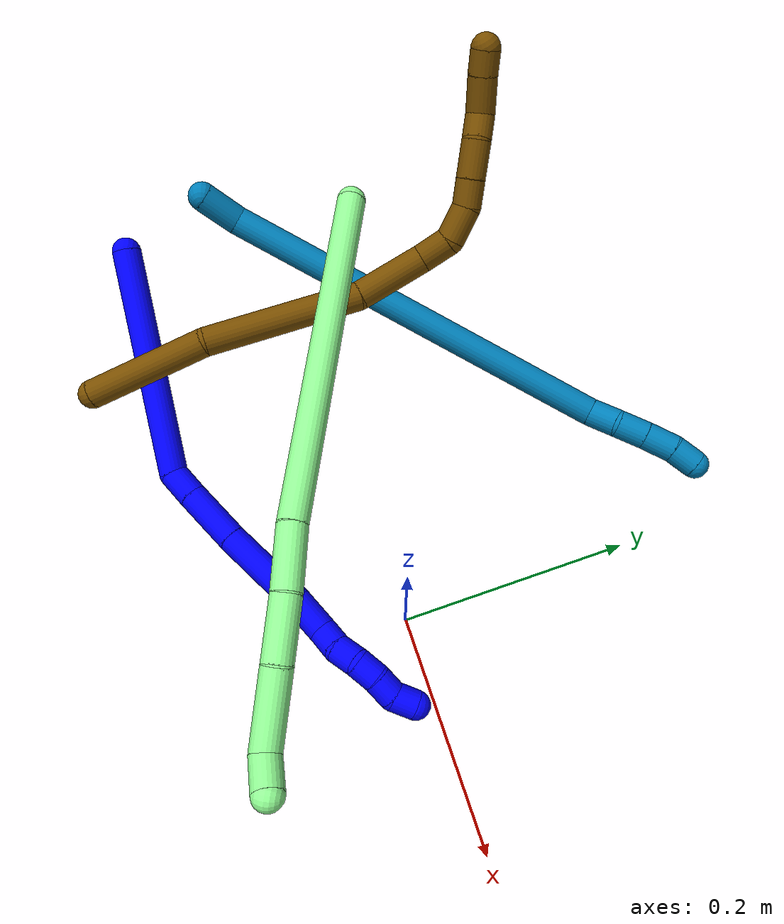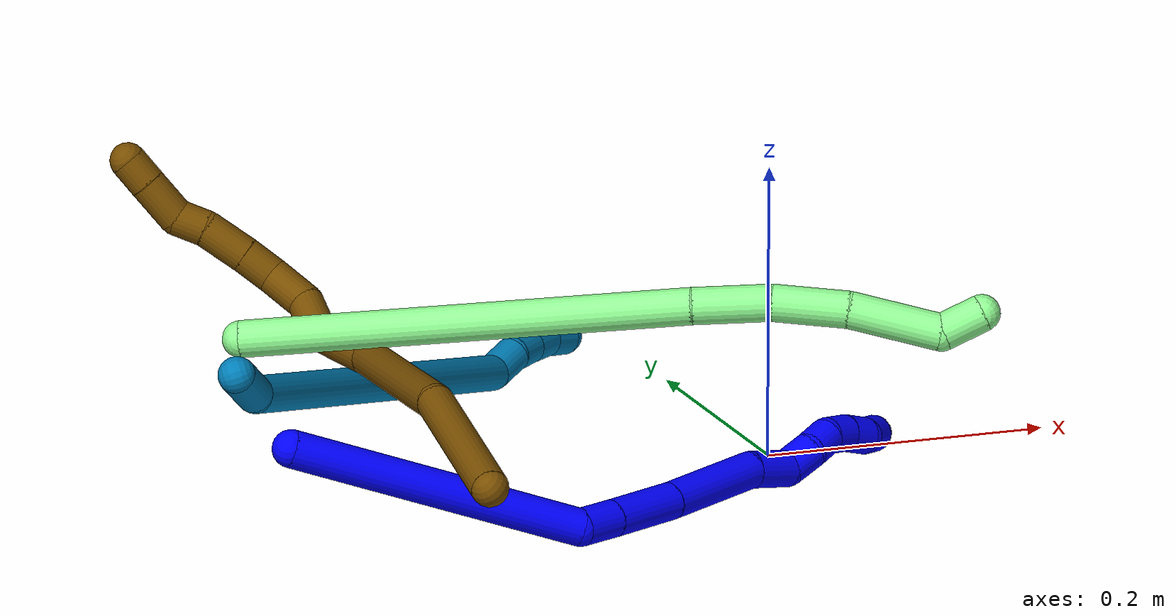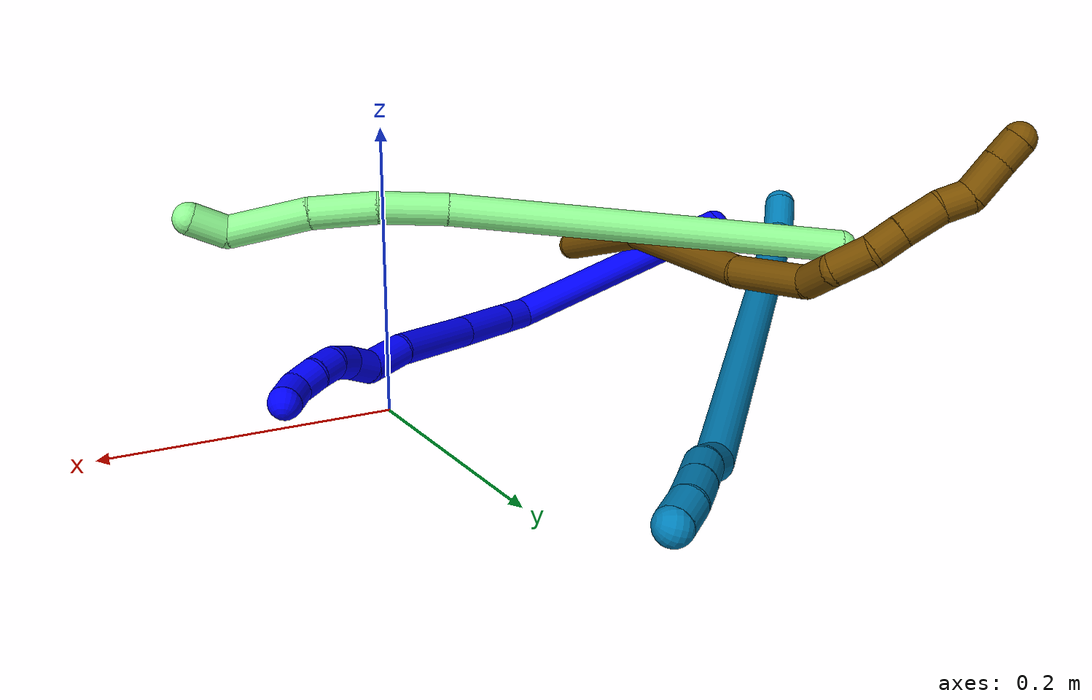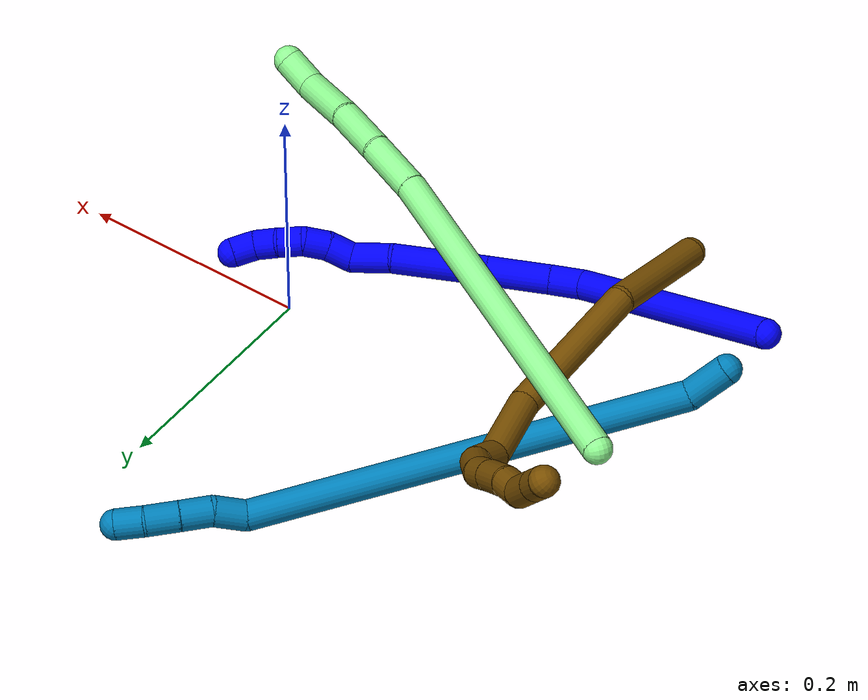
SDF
<sdf version="1.7">
 <world name="default">
  <model name="1">
   <static>0</static>
   <link name="1">
    <collision name="collision-cylinder-e_1_1_4">
     <pose>0.084915 -0.02155 -0.048684 2.72486 1.01077 2.41159</pose>
     <geometry><cylinder><radius>0.0125</radius><length>0.200452</length></cylinder></geometry>
     <surface>
      <friction><ode><mu>1.16</mu><mu2>1.16</mu2><slip1>0</slip1><slip2>0</slip2></ode></friction>
      <contact><ode><kp>1e+06</kp><kd>1</kd><max_vel>0</max_vel><min_depth>0.001</min_depth></ode></contact>
     </surface>
    </collision>
    <visual name="visual-cylinder-e_1_1_4">
     <pose>0.084915 -0.02155 -0.048684 2.72486 1.01077 2.41159</pose>
     <geometry><cylinder><radius>0.0125</radius><length>0.200452</length></cylinder></geometry>
     <material><ambient>0 0 1 1</ambient></material>
    </visual>
    <collision name="collision-cylinder-e_2_4_5">
     <pose>0.179753 -0.037995 -0.106062 -2.6105 0.777409 -1.96918</pose>
     <geometry><cylinder><radius>0.0125</radius><length>0.02829</length></cylinder></geometry>
     <surface>
      <friction><ode><mu>1.16</mu><mu2>1.16</mu2><slip1>0</slip1><slip2>0</slip2></ode></friction>
      <contact><ode><kp>1e+06</kp><kd>1</kd><max_vel>0</max_vel><min_depth>0.001</min_depth></ode></contact>
     </surface>
    </collision>
    <visual name="visual-cylinder-e_2_4_5">
     <pose>0.179753 -0.037995 -0.106062 -2.6105 0.777409 -1.96918</pose>
     <geometry><cylinder><radius>0.0125</radius><length>0.02829</length></cylinder></geometry>
     <material><ambient>0 0 1 1</ambient></material>
    </visual>
    <collision name="collision-cylinder-e_3_5_6">
     <pose>0.207753 -0.022843 -0.13134 -2.59696 0.750413 -1.9081</pose>
     <geometry><cylinder><radius>0.0125</radius><length>0.053021</length></cylinder></geometry>
     <surface>
      <friction><ode><mu>1.16</mu><mu2>1.16</mu2><slip1>0</slip1><slip2>0</slip2></ode></friction>
      <contact><ode><kp>1e+06</kp><kd>1</kd><max_vel>0</max_vel><min_depth>0.001</min_depth></ode></contact>
     </surface>
    </collision>
    <visual name="visual-cylinder-e_3_5_6">
     <pose>0.207753 -0.022843 -0.13134 -2.59696 0.750413 -1.9081</pose>
     <geometry><cylinder><radius>0.0125</radius><length>0.053021</length></cylinder></geometry>
     <material><ambient>0 0 1 1</ambient></material>
    </visual>
    <collision name="collision-cylinder-e_4_6_7">
     <pose>0.251561 0.004437 -0.172687 -2.53359 0.706127 -1.73104</pose>
     <geometry><cylinder><radius>0.0125</radius><length>0.079302</length></cylinder></geometry>
     <surface>
      <friction><ode><mu>1.16</mu><mu2>1.16</mu2><slip1>0</slip1><slip2>0</slip2></ode></friction>
      <contact><ode><kp>1e+06</kp><kd>1</kd><max_vel>0</max_vel><min_depth>0.001</min_depth></ode></contact>
     </surface>
    </collision>
    <visual name="visual-cylinder-e_4_6_7">
     <pose>0.251561 0.004437 -0.172687 -2.53359 0.706127 -1.73104</pose>
     <geometry><cylinder><radius>0.0125</radius><length>0.079302</length></cylinder></geometry>
     <material><ambient>0 0 1 1</ambient></material>
    </visual>
    <collision name="collision-cylinder-e_5_7_8">
     <pose>0.288563 0.025401 -0.20972 -2.84649 0.721131 -2.3906</pose>
     <geometry><cylinder><radius>0.0125</radius><length>0.03415</length></cylinder></geometry>
     <surface>
      <friction><ode><mu>1.16</mu><mu2>1.16</mu2><slip1>0</slip1><slip2>0</slip2></ode></friction>
      <contact><ode><kp>1e+06</kp><kd>1</kd><max_vel>0</max_vel><min_depth>0.001</min_depth></ode></contact>
     </surface>
    </collision>
    <visual name="visual-cylinder-e_5_7_8">
     <pose>0.288563 0.025401 -0.20972 -2.84649 0.721131 -2.3906</pose>
     <geometry><cylinder><radius>0.0125</radius><length>0.03415</length></cylinder></geometry>
     <material><ambient>0 0 1 1</ambient></material>
    </visual>
    <collision name="collision-cylinder-e_6_8_9">
     <pose>0.308092 0.035869 -0.225682 -2.07211 0.821196 -1.26766</pose>
     <geometry><cylinder><radius>0.0125</radius><length>0.022556</length></cylinder></geometry>
     <surface>
      <friction><ode><mu>1.16</mu><mu2>1.16</mu2><slip1>0</slip1><slip2>0</slip2></ode></friction>
      <contact><ode><kp>1e+06</kp><kd>1</kd><max_vel>0</max_vel><min_depth>0.001</min_depth></ode></contact>
     </surface>
    </collision>
    <visual name="visual-cylinder-e_6_8_9">
     <pose>0.308092 0.035869 -0.225682 -2.07211 0.821196 -1.26766</pose>
     <geometry><cylinder><radius>0.0125</radius><length>0.022556</length></cylinder></geometry>
     <material><ambient>0 0 1 1</ambient></material>
    </visual>
    <collision name="collision-cylinder-e_7_9_10">
     <pose>0.322203 0.049315 -0.235014 -2.26979 0.589171 -1.15473</pose>
     <geometry><cylinder><radius>0.0125</radius><length>0.021079</length></cylinder></geometry>
     <surface>
      <friction><ode><mu>1.16</mu><mu2>1.16</mu2><slip1>0</slip1><slip2>0</slip2></ode></friction>
      <contact><ode><kp>1e+06</kp><kd>1</kd><max_vel>0</max_vel><min_depth>0.001</min_depth></ode></contact>
     </surface>
    </collision>
    <visual name="visual-cylinder-e_7_9_10">
     <pose>0.322203 0.049315 -0.235014 -2.26979 0.589171 -1.15473</pose>
     <geometry><cylinder><radius>0.0125</radius><length>0.021079</length></cylinder></geometry>
     <material><ambient>0 0 1 1</ambient></material>
    </visual>
    <collision name="collision-cylinder-e_8_10_11">
     <pose>0.333704 0.059442 -0.248539 -2.73256 0.580995 -1.92848</pose>
     <geometry><cylinder><radius>0.0125</radius><length>0.020567</length></cylinder></geometry>
     <surface>
      <friction><ode><mu>1.16</mu><mu2>1.16</mu2><slip1>0</slip1><slip2>0</slip2></ode></friction>
      <contact><ode><kp>1e+06</kp><kd>1</kd><max_vel>0</max_vel><min_depth>0.001</min_depth></ode></contact>
     </surface>
    </collision>
    <visual name="visual-cylinder-e_8_10_11">
     <pose>0.333704 0.059442 -0.248539 -2.73256 0.580995 -1.92848</pose>
     <geometry><cylinder><radius>0.0125</radius><length>0.020567</length></cylinder></geometry>
     <material><ambient>0 0 1 1</ambient></material>
    </visual>
    <collision name="collision-cylinder-e_9_11_12">
     <pose>0.345366 0.064186 -0.264388 -2.97669 0.640624 -2.65331</pose>
     <geometry><cylinder><radius>0.0125</radius><length>0.020136</length></cylinder></geometry>
     <surface>
      <friction><ode><mu>1.16</mu><mu2>1.16</mu2><slip1>0</slip1><slip2>0</slip2></ode></friction>
      <contact><ode><kp>1e+06</kp><kd>1</kd><max_vel>0</max_vel><min_depth>0.001</min_depth></ode></contact>
     </surface>
    </collision>
    <visual name="visual-cylinder-e_9_11_12">
     <pose>0.345366 0.064186 -0.264388 -2.97669 0.640624 -2.65331</pose>
     <geometry><cylinder><radius>0.0125</radius><length>0.020136</length></cylinder></geometry>
     <material><ambient>0 0 1 1</ambient></material>
    </visual>
    <collision name="collision-cylinder-e_10_12_2">
     <pose>0.354079 0.069728 -0.281266 -2.69978 0.266835 -1.07737</pose>
     <geometry><cylinder><radius>0.0125</radius><length>0.020448</length></cylinder></geometry>
     <surface>
      <friction><ode><mu>1.16</mu><mu2>1.16</mu2><slip1>0</slip1><slip2>0</slip2></ode></friction>
      <contact><ode><kp>1e+06</kp><kd>1</kd><max_vel>0</max_vel><min_depth>0.001</min_depth></ode></contact>
     </surface>
    </collision>
    <visual name="visual-cylinder-e_10_12_2">
     <pose>0.354079 0.069728 -0.281266 -2.69978 0.266835 -1.07737</pose>
     <geometry><cylinder><radius>0.0125</radius><length>0.020448</length></cylinder></geometry>
     <material><ambient>0 0 1 1</ambient></material>
    </visual>
    <collision name="collision-sphere-2">
     <pose>0.356775 0.073945 -0.290181 0 -0 0</pose>
     <geometry><sphere><radius>0.0125</radius></sphere></geometry>
     <surface>
      <friction><ode><mu>1.16</mu><mu2>1.16</mu2><slip1>0</slip1><slip2>0</slip2></ode></friction>
      <contact><ode><kp>1e+06</kp><kd>1</kd><max_vel>0</max_vel><min_depth>0.001</min_depth></ode></contact>
     </surface>
    </collision>
    <visual name="visual-sphere-2">
     <pose>0.356775 0.073945 -0.290181 0 -0 0</pose>
     <geometry><sphere><radius>0.0125</radius></sphere></geometry>
     <material><ambient>0 0 1 1</ambient></material>
    </visual>
    <collision name="collision-sphere-12">
     <pose>0.351383 0.065511 -0.272351 0 -0 0</pose>
     <geometry><sphere><radius>0.0125</radius></sphere></geometry>
     <surface>
      <friction><ode><mu>1.16</mu><mu2>1.16</mu2><slip1>0</slip1><slip2>0</slip2></ode></friction>
      <contact><ode><kp>1e+06</kp><kd>1</kd><max_vel>0</max_vel><min_depth>0.001</min_depth></ode></contact>
     </surface>
    </collision>
    <visual name="visual-sphere-12">
     <pose>0.351383 0.065511 -0.272351 0 -0 0</pose>
     <geometry><sphere><radius>0.0125</radius></sphere></geometry>
     <material><ambient>0 0 1 1</ambient></material>
    </visual>
    <collision name="collision-sphere-11">
     <pose>0.339348 0.062861 -0.256426 0 -0 0</pose>
     <geometry><sphere><radius>0.0125</radius></sphere></geometry>
     <surface>
      <friction><ode><mu>1.16</mu><mu2>1.16</mu2><slip1>0</slip1><slip2>0</slip2></ode></friction>
      <contact><ode><kp>1e+06</kp><kd>1</kd><max_vel>0</max_vel><min_depth>0.001</min_depth></ode></contact>
     </surface>
    </collision>
    <visual name="visual-sphere-11">
     <pose>0.339348 0.062861 -0.256426 0 -0 0</pose>
     <geometry><sphere><radius>0.0125</radius></sphere></geometry>
     <material><ambient>0 0 1 1</ambient></material>
    </visual>
    <collision name="collision-sphere-10">
     <pose>0.32806 0.056023 -0.240652 0 -0 0</pose>
     <geometry><sphere><radius>0.0125</radius></sphere></geometry>
     <surface>
      <friction><ode><mu>1.16</mu><mu2>1.16</mu2><slip1>0</slip1><slip2>0</slip2></ode></friction>
      <contact><ode><kp>1e+06</kp><kd>1</kd><max_vel>0</max_vel><min_depth>0.001</min_depth></ode></contact>
     </surface>
    </collision>
    <visual name="visual-sphere-10">
     <pose>0.32806 0.056023 -0.240652 0 -0 0</pose>
     <geometry><sphere><radius>0.0125</radius></sphere></geometry>
     <material><ambient>0 0 1 1</ambient></material>
    </visual>
    <collision name="collision-sphere-9">
     <pose>0.316347 0.042608 -0.229375 0 -0 0</pose>
     <geometry><sphere><radius>0.0125</radius></sphere></geometry>
     <surface>
      <friction><ode><mu>1.16</mu><mu2>1.16</mu2><slip1>0</slip1><slip2>0</slip2></ode></friction>
      <contact><ode><kp>1e+06</kp><kd>1</kd><max_vel>0</max_vel><min_depth>0.001</min_depth></ode></contact>
     </surface>
    </collision>
    <visual name="visual-sphere-9">
     <pose>0.316347 0.042608 -0.229375 0 -0 0</pose>
     <geometry><sphere><radius>0.0125</radius></sphere></geometry>
     <material><ambient>0 0 1 1</ambient></material>
    </visual>
    <collision name="collision-sphere-4">
     <pose>0.169831 -0.043101 -0.097369 0 -0 0</pose>
     <geometry><sphere><radius>0.0125</radius></sphere></geometry>
     <surface>
      <friction><ode><mu>1.16</mu><mu2>1.16</mu2><slip1>0</slip1><slip2>0</slip2></ode></friction>
      <contact><ode><kp>1e+06</kp><kd>1</kd><max_vel>0</max_vel><min_depth>0.001</min_depth></ode></contact>
     </surface>
    </collision>
    <visual name="visual-sphere-4">
     <pose>0.169831 -0.043101 -0.097369 0 -0 0</pose>
     <geometry><sphere><radius>0.0125</radius></sphere></geometry>
     <material><ambient>0 0 1 1</ambient></material>
    </visual>
    <collision name="collision-sphere-1">
     <geometry><sphere><radius>0.0125</radius></sphere></geometry>
     <surface>
      <friction><ode><mu>1.16</mu><mu2>1.16</mu2><slip1>0</slip1><slip2>0</slip2></ode></friction>
      <contact><ode><kp>1e+06</kp><kd>1</kd><max_vel>0</max_vel><min_depth>0.001</min_depth></ode></contact>
     </surface>
    </collision>
    <visual name="visual-sphere-1">
     <geometry><sphere><radius>0.0125</radius></sphere></geometry>
     <material><ambient>0 0 1 1</ambient></material>
    </visual>
    <collision name="collision-sphere-8">
     <pose>0.299837 0.02913 -0.22199 0 -0 0</pose>
     <geometry><sphere><radius>0.0125</radius></sphere></geometry>
     <surface>
      <friction><ode><mu>1.16</mu><mu2>1.16</mu2><slip1>0</slip1><slip2>0</slip2></ode></friction>
      <contact><ode><kp>1e+06</kp><kd>1</kd><max_vel>0</max_vel><min_depth>0.001</min_depth></ode></contact>
     </surface>
    </collision>
    <visual name="visual-sphere-8">
     <pose>0.299837 0.02913 -0.22199 0 -0 0</pose>
     <geometry><sphere><radius>0.0125</radius></sphere></geometry>
     <material><ambient>0 0 1 1</ambient></material>
    </visual>
    <collision name="collision-sphere-5">
     <pose>0.189675 -0.032889 -0.114755 0 -0 0</pose>
     <geometry><sphere><radius>0.0125</radius></sphere></geometry>
     <surface>
      <friction><ode><mu>1.16</mu><mu2>1.16</mu2><slip1>0</slip1><slip2>0</slip2></ode></friction>
      <contact><ode><kp>1e+06</kp><kd>1</kd><max_vel>0</max_vel><min_depth>0.001</min_depth></ode></contact>
     </surface>
    </collision>
    <visual name="visual-sphere-5">
     <pose>0.189675 -0.032889 -0.114755 0 -0 0</pose>
     <geometry><sphere><radius>0.0125</radius></sphere></geometry>
     <material><ambient>0 0 1 1</ambient></material>
    </visual>
    <collision name="collision-sphere-6">
     <pose>0.225831 -0.012797 -0.147924 0 -0 0</pose>
     <geometry><sphere><radius>0.0125</radius></sphere></geometry>
     <surface>
      <friction><ode><mu>1.16</mu><mu2>1.16</mu2><slip1>0</slip1><slip2>0</slip2></ode></friction>
      <contact><ode><kp>1e+06</kp><kd>1</kd><max_vel>0</max_vel><min_depth>0.001</min_depth></ode></contact>
     </surface>
    </collision>
    <visual name="visual-sphere-6">
     <pose>0.225831 -0.012797 -0.147924 0 -0 0</pose>
     <geometry><sphere><radius>0.0125</radius></sphere></geometry>
     <material><ambient>0 0 1 1</ambient></material>
    </visual>
    <collision name="collision-sphere-7">
     <pose>0.27729 0.021671 -0.19745 0 -0 0</pose>
     <geometry><sphere><radius>0.0125</radius></sphere></geometry>
     <surface>
      <friction><ode><mu>1.16</mu><mu2>1.16</mu2><slip1>0</slip1><slip2>0</slip2></ode></friction>
      <contact><ode><kp>1e+06</kp><kd>1</kd><max_vel>0</max_vel><min_depth>0.001</min_depth></ode></contact>
     </surface>
    </collision>
    <visual name="visual-sphere-7">
     <pose>0.27729 0.021671 -0.19745 0 -0 0</pose>
     <geometry><sphere><radius>0.0125</radius></sphere></geometry>
     <material><ambient>0 0 1 1</ambient></material>
    </visual>
    <inertial>
     <pose>0.195448 0.000806 -0.133621 0 -0 0</pose>
     <mass>0.5</mass>
     <inertia>
      <ixx>-6.6e-05</ixx>
      <ixy>0</ixy>
      <ixz>0</ixz>
      <iyy>0.000851</iyy>
      <iyz>0</iyz>
      <izz>-0.000531</izz>
     </inertia>
    </inertial>
   </link>
   <pose>-0.376211 -0.131156 0.077086 0.89029 -0.166926 -0.377487</pose>
  </model>
  <model name="9">
   <static>0</static>
   <link name="9">
    <collision name="collision-cylinder-e_1_1_4">
     <pose>0.010808 0.014279 -0.002643 -1.75384 0.639816 -0.757982</pose>
     <geometry><cylinder><radius>0.0125</radius><length>0.036204</length></cylinder></geometry>
     <surface>
      <friction><ode><mu>1.16</mu><mu2>1.16</mu2><slip1>0</slip1><slip2>0</slip2></ode></friction>
      <contact><ode><kp>1e+06</kp><kd>1</kd><max_vel>0</max_vel><min_depth>0.001</min_depth></ode></contact>
     </surface>
    </collision>
    <visual name="visual-cylinder-e_1_1_4">
     <pose>0.010808 0.014279 -0.002643 -1.75384 0.639816 -0.757982</pose>
     <geometry><cylinder><radius>0.0125</radius><length>0.036204</length></cylinder></geometry>
     <material><ambient>0 0.490196 0.709804 1</ambient></material>
    </visual>
    <collision name="collision-cylinder-e_2_4_5">
     <pose>0.159669 0.119437 -0.075789 -2.2306 0.876163 -1.52611</pose>
     <geometry><cylinder><radius>0.0125</radius><length>0.359378</length></cylinder></geometry>
     <surface>
      <friction><ode><mu>1.16</mu><mu2>1.16</mu2><slip1>0</slip1><slip2>0</slip2></ode></friction>
      <contact><ode><kp>1e+06</kp><kd>1</kd><max_vel>0</max_vel><min_depth>0.001</min_depth></ode></contact>
     </surface>
    </collision>
    <visual name="visual-cylinder-e_2_4_5">
     <pose>0.159669 0.119437 -0.075789 -2.2306 0.876163 -1.52611</pose>
     <geometry><cylinder><radius>0.0125</radius><length>0.359378</length></cylinder></geometry>
     <material><ambient>0 0.490196 0.709804 1</ambient></material>
    </visual>
    <collision name="collision-cylinder-e_3_5_6">
     <pose>0.30856 0.211411 -0.154568 -3.00998 0.914418 -2.87528</pose>
     <geometry><cylinder><radius>0.0125</radius><length>0.027361</length></cylinder></geometry>
     <surface>
      <friction><ode><mu>1.16</mu><mu2>1.16</mu2><slip1>0</slip1><slip2>0</slip2></ode></friction>
      <contact><ode><kp>1e+06</kp><kd>1</kd><max_vel>0</max_vel><min_depth>0.001</min_depth></ode></contact>
     </surface>
    </collision>
    <visual name="visual-cylinder-e_3_5_6">
     <pose>0.30856 0.211411 -0.154568 -3.00998 0.914418 -2.87528</pose>
     <geometry><cylinder><radius>0.0125</radius><length>0.027361</length></cylinder></geometry>
     <material><ambient>0 0.490196 0.709804 1</ambient></material>
    </visual>
    <collision name="collision-cylinder-e_4_6_7">
     <pose>0.330299 0.217006 -0.168596 -2.47781 0.980625 -1.99497</pose>
     <geometry><cylinder><radius>0.0125</radius><length>0.026242</length></cylinder></geometry>
     <surface>
      <friction><ode><mu>1.16</mu><mu2>1.16</mu2><slip1>0</slip1><slip2>0</slip2></ode></friction>
      <contact><ode><kp>1e+06</kp><kd>1</kd><max_vel>0</max_vel><min_depth>0.001</min_depth></ode></contact>
     </surface>
    </collision>
    <visual name="visual-cylinder-e_4_6_7">
     <pose>0.330299 0.217006 -0.168596 -2.47781 0.980625 -1.99497</pose>
     <geometry><cylinder><radius>0.0125</radius><length>0.026242</length></cylinder></geometry>
     <material><ambient>0 0.490196 0.709804 1</ambient></material>
    </visual>
    <collision name="collision-cylinder-e_5_7_8">
     <pose>0.352261 0.226608 -0.180666 -2.46221 0.937346 -1.92284</pose>
     <geometry><cylinder><radius>0.0125</radius><length>0.027446</length></cylinder></geometry>
     <surface>
      <friction><ode><mu>1.16</mu><mu2>1.16</mu2><slip1>0</slip1><slip2>0</slip2></ode></friction>
      <contact><ode><kp>1e+06</kp><kd>1</kd><max_vel>0</max_vel><min_depth>0.001</min_depth></ode></contact>
     </surface>
    </collision>
    <visual name="visual-cylinder-e_5_7_8">
     <pose>0.352261 0.226608 -0.180666 -2.46221 0.937346 -1.92284</pose>
     <geometry><cylinder><radius>0.0125</radius><length>0.027446</length></cylinder></geometry>
     <material><ambient>0 0.490196 0.709804 1</ambient></material>
    </visual>
    <collision name="collision-cylinder-e_6_8_2">
     <pose>0.371327 0.237383 -0.193332 -2.41232 0.754798 -1.60856</pose>
     <geometry><cylinder><radius>0.0125</radius><length>0.023368</length></cylinder></geometry>
     <surface>
      <friction><ode><mu>1.16</mu><mu2>1.16</mu2><slip1>0</slip1><slip2>0</slip2></ode></friction>
      <contact><ode><kp>1e+06</kp><kd>1</kd><max_vel>0</max_vel><min_depth>0.001</min_depth></ode></contact>
     </surface>
    </collision>
    <visual name="visual-cylinder-e_6_8_2">
     <pose>0.371327 0.237383 -0.193332 -2.41232 0.754798 -1.60856</pose>
     <geometry><cylinder><radius>0.0125</radius><length>0.023368</length></cylinder></geometry>
     <material><ambient>0 0.490196 0.709804 1</ambient></material>
    </visual>
    <collision name="collision-sphere-2">
     <pose>0.379332 0.243054 -0.199678 0 -0 0</pose>
     <geometry><sphere><radius>0.0125</radius></sphere></geometry>
     <surface>
      <friction><ode><mu>1.16</mu><mu2>1.16</mu2><slip1>0</slip1><slip2>0</slip2></ode></friction>
      <contact><ode><kp>1e+06</kp><kd>1</kd><max_vel>0</max_vel><min_depth>0.001</min_depth></ode></contact>
     </surface>
    </collision>
    <visual name="visual-sphere-2">
     <pose>0.379332 0.243054 -0.199678 0 -0 0</pose>
     <geometry><sphere><radius>0.0125</radius></sphere></geometry>
     <material><ambient>0 0.490196 0.709804 1</ambient></material>
    </visual>
    <collision name="collision-sphere-4">
     <pose>0.021616 0.028558 -0.005287 0 -0 0</pose>
     <geometry><sphere><radius>0.0125</radius></sphere></geometry>
     <surface>
      <friction><ode><mu>1.16</mu><mu2>1.16</mu2><slip1>0</slip1><slip2>0</slip2></ode></friction>
      <contact><ode><kp>1e+06</kp><kd>1</kd><max_vel>0</max_vel><min_depth>0.001</min_depth></ode></contact>
     </surface>
    </collision>
    <visual name="visual-sphere-4">
     <pose>0.021616 0.028558 -0.005287 0 -0 0</pose>
     <geometry><sphere><radius>0.0125</radius></sphere></geometry>
     <material><ambient>0 0.490196 0.709804 1</ambient></material>
    </visual>
    <collision name="collision-sphere-1">
     <geometry><sphere><radius>0.0125</radius></sphere></geometry>
     <surface>
      <friction><ode><mu>1.16</mu><mu2>1.16</mu2><slip1>0</slip1><slip2>0</slip2></ode></friction>
      <contact><ode><kp>1e+06</kp><kd>1</kd><max_vel>0</max_vel><min_depth>0.001</min_depth></ode></contact>
     </surface>
    </collision>
    <visual name="visual-sphere-1">
     <geometry><sphere><radius>0.0125</radius></sphere></geometry>
     <material><ambient>0 0.490196 0.709804 1</ambient></material>
    </visual>
    <collision name="collision-sphere-8">
     <pose>0.363322 0.231712 -0.186986 0 -0 0</pose>
     <geometry><sphere><radius>0.0125</radius></sphere></geometry>
     <surface>
      <friction><ode><mu>1.16</mu><mu2>1.16</mu2><slip1>0</slip1><slip2>0</slip2></ode></friction>
      <contact><ode><kp>1e+06</kp><kd>1</kd><max_vel>0</max_vel><min_depth>0.001</min_depth></ode></contact>
     </surface>
    </collision>
    <visual name="visual-sphere-8">
     <pose>0.363322 0.231712 -0.186986 0 -0 0</pose>
     <geometry><sphere><radius>0.0125</radius></sphere></geometry>
     <material><ambient>0 0.490196 0.709804 1</ambient></material>
    </visual>
    <collision name="collision-sphere-5">
     <pose>0.297722 0.210316 -0.146291 0 -0 0</pose>
     <geometry><sphere><radius>0.0125</radius></sphere></geometry>
     <surface>
      <friction><ode><mu>1.16</mu><mu2>1.16</mu2><slip1>0</slip1><slip2>0</slip2></ode></friction>
      <contact><ode><kp>1e+06</kp><kd>1</kd><max_vel>0</max_vel><min_depth>0.001</min_depth></ode></contact>
     </surface>
    </collision>
    <visual name="visual-sphere-5">
     <pose>0.297722 0.210316 -0.146291 0 -0 0</pose>
     <geometry><sphere><radius>0.0125</radius></sphere></geometry>
     <material><ambient>0 0.490196 0.709804 1</ambient></material>
    </visual>
    <collision name="collision-sphere-6">
     <pose>0.319398 0.212507 -0.162844 0 -0 0</pose>
     <geometry><sphere><radius>0.0125</radius></sphere></geometry>
     <surface>
      <friction><ode><mu>1.16</mu><mu2>1.16</mu2><slip1>0</slip1><slip2>0</slip2></ode></friction>
      <contact><ode><kp>1e+06</kp><kd>1</kd><max_vel>0</max_vel><min_depth>0.001</min_depth></ode></contact>
     </surface>
    </collision>
    <visual name="visual-sphere-6">
     <pose>0.319398 0.212507 -0.162844 0 -0 0</pose>
     <geometry><sphere><radius>0.0125</radius></sphere></geometry>
     <material><ambient>0 0.490196 0.709804 1</ambient></material>
    </visual>
    <collision name="collision-sphere-7">
     <pose>0.341201 0.221505 -0.174347 0 -0 0</pose>
     <geometry><sphere><radius>0.0125</radius></sphere></geometry>
     <surface>
      <friction><ode><mu>1.16</mu><mu2>1.16</mu2><slip1>0</slip1><slip2>0</slip2></ode></friction>
      <contact><ode><kp>1e+06</kp><kd>1</kd><max_vel>0</max_vel><min_depth>0.001</min_depth></ode></contact>
     </surface>
    </collision>
    <visual name="visual-sphere-7">
     <pose>0.341201 0.221505 -0.174347 0 -0 0</pose>
     <geometry><sphere><radius>0.0125</radius></sphere></geometry>
     <material><ambient>0 0.490196 0.709804 1</ambient></material>
    </visual>
    <inertial>
     <pose>0.186457 0.133372 -0.090925 0 -0 0</pose>
     <mass>0.5</mass>
     <inertia>
      <ixx>-0.002349</ixx>
      <ixy>0</ixy>
      <ixz>0</ixz>
      <iyy>-0.000214</iyy>
      <iyz>0</iyz>
      <izz>-0.00498</izz>
     </inertia>
    </inertial>
   </link>
   <pose>-0.38847 -0.052425 0.106221 -1.88937 -0.190508 1.36339</pose>
  </model>
  <model name="12">
   <static>0</static>
   <link name="12">
    <collision name="collision-cylinder-e_1_1_4">
     <pose>-0.017793 0.051977 0.00258 -1.5212 -0.329441 0.31376</pose>
     <geometry><cylinder><radius>0.0125</radius><length>0.109998</length></cylinder></geometry>
     <surface>
      <friction><ode><mu>1.16</mu><mu2>1.16</mu2><slip1>0</slip1><slip2>0</slip2></ode></friction>
      <contact><ode><kp>1e+06</kp><kd>1</kd><max_vel>0</max_vel><min_depth>0.001</min_depth></ode></contact>
     </surface>
    </collision>
    <visual name="visual-cylinder-e_1_1_4">
     <pose>-0.017793 0.051977 0.00258 -1.5212 -0.329441 0.31376</pose>
     <geometry><cylinder><radius>0.0125</radius><length>0.109998</length></cylinder></geometry>
     <material><ambient>0.466667 0.301961 0 1</ambient></material>
    </visual>
    <collision name="collision-cylinder-e_2_4_5">
     <pose>-0.044942 0.169272 0.024735 -1.27963 -0.136357 0.101554</pose>
     <geometry><cylinder><radius>0.0125</radius><length>0.137653</length></cylinder></geometry>
     <surface>
      <friction><ode><mu>1.16</mu><mu2>1.16</mu2><slip1>0</slip1><slip2>0</slip2></ode></friction>
      <contact><ode><kp>1e+06</kp><kd>1</kd><max_vel>0</max_vel><min_depth>0.001</min_depth></ode></contact>
     </surface>
    </collision>
    <visual name="visual-cylinder-e_2_4_5">
     <pose>-0.044942 0.169272 0.024735 -1.27963 -0.136357 0.101554</pose>
     <geometry><cylinder><radius>0.0125</radius><length>0.137653</length></cylinder></geometry>
     <material><ambient>0.466667 0.301961 0 1</ambient></material>
    </visual>
    <collision name="collision-cylinder-e_3_5_6">
     <pose>-0.054865 0.266865 0.046866 -1.49175 -0.017523 0.01619</pose>
     <geometry><cylinder><radius>0.0125</radius><length>0.064763</length></cylinder></geometry>
     <surface>
      <friction><ode><mu>1.16</mu><mu2>1.16</mu2><slip1>0</slip1><slip2>0</slip2></ode></friction>
      <contact><ode><kp>1e+06</kp><kd>1</kd><max_vel>0</max_vel><min_depth>0.001</min_depth></ode></contact>
     </surface>
    </collision>
    <visual name="visual-cylinder-e_3_5_6">
     <pose>-0.054865 0.266865 0.046866 -1.49175 -0.017523 0.01619</pose>
     <geometry><cylinder><radius>0.0125</radius><length>0.064763</length></cylinder></geometry>
     <material><ambient>0.466667 0.301961 0 1</ambient></material>
    </visual>
    <collision name="collision-cylinder-e_4_6_7">
     <pose>-0.06187 0.312294 0.046917 -1.75902 -0.448138 0.537481</pose>
     <geometry><cylinder><radius>0.0125</radius><length>0.029714</length></cylinder></geometry>
     <surface>
      <friction><ode><mu>1.16</mu><mu2>1.16</mu2><slip1>0</slip1><slip2>0</slip2></ode></friction>
      <contact><ode><kp>1e+06</kp><kd>1</kd><max_vel>0</max_vel><min_depth>0.001</min_depth></ode></contact>
     </surface>
    </collision>
    <visual name="visual-cylinder-e_4_6_7">
     <pose>-0.06187 0.312294 0.046917 -1.75902 -0.448138 0.537481</pose>
     <geometry><cylinder><radius>0.0125</radius><length>0.029714</length></cylinder></geometry>
     <material><ambient>0.466667 0.301961 0 1</ambient></material>
    </visual>
    <collision name="collision-cylinder-e_5_7_8">
     <pose>-0.068639 0.338309 0.036186 -2.13978 -0.021722 0.039672</pose>
     <geometry><cylinder><radius>0.0125</radius><length>0.030543</length></cylinder></geometry>
     <surface>
      <friction><ode><mu>1.16</mu><mu2>1.16</mu2><slip1>0</slip1><slip2>0</slip2></ode></friction>
      <contact><ode><kp>1e+06</kp><kd>1</kd><max_vel>0</max_vel><min_depth>0.001</min_depth></ode></contact>
     </surface>
    </collision>
    <visual name="visual-cylinder-e_5_7_8">
     <pose>-0.068639 0.338309 0.036186 -2.13978 -0.021722 0.039672</pose>
     <geometry><cylinder><radius>0.0125</radius><length>0.030543</length></cylinder></geometry>
     <material><ambient>0.466667 0.301961 0 1</ambient></material>
    </visual>
    <collision name="collision-cylinder-e_6_8_9">
     <pose>-0.067964 0.358474 0.018979 -2.45893 0.086757 -0.243172</pose>
     <geometry><cylinder><radius>0.0125</radius><length>0.023236</length></cylinder></geometry>
     <surface>
      <friction><ode><mu>1.16</mu><mu2>1.16</mu2><slip1>0</slip1><slip2>0</slip2></ode></friction>
      <contact><ode><kp>1e+06</kp><kd>1</kd><max_vel>0</max_vel><min_depth>0.001</min_depth></ode></contact>
     </surface>
    </collision>
    <visual name="visual-cylinder-e_6_8_9">
     <pose>-0.067964 0.358474 0.018979 -2.45893 0.086757 -0.243172</pose>
     <geometry><cylinder><radius>0.0125</radius><length>0.023236</length></cylinder></geometry>
     <material><ambient>0.466667 0.301961 0 1</ambient></material>
    </visual>
    <collision name="collision-cylinder-e_7_9_10">
     <pose>-0.06496 0.376043 -0.001948 -2.43165 0.126091 -0.337382</pose>
     <geometry><cylinder><radius>0.0125</radius><length>0.031757</length></cylinder></geometry>
     <surface>
      <friction><ode><mu>1.16</mu><mu2>1.16</mu2><slip1>0</slip1><slip2>0</slip2></ode></friction>
      <contact><ode><kp>1e+06</kp><kd>1</kd><max_vel>0</max_vel><min_depth>0.001</min_depth></ode></contact>
     </surface>
    </collision>
    <visual name="visual-cylinder-e_7_9_10">
     <pose>-0.06496 0.376043 -0.001948 -2.43165 0.126091 -0.337382</pose>
     <geometry><cylinder><radius>0.0125</radius><length>0.031757</length></cylinder></geometry>
     <material><ambient>0.466667 0.301961 0 1</ambient></material>
    </visual>
    <collision name="collision-cylinder-e_8_10_11">
     <pose>-0.059442 0.393748 -0.020816 -2.32021 0.333684 -0.738046</pose>
     <geometry><cylinder><radius>0.0125</radius><length>0.021505</length></cylinder></geometry>
     <surface>
      <friction><ode><mu>1.16</mu><mu2>1.16</mu2><slip1>0</slip1><slip2>0</slip2></ode></friction>
      <contact><ode><kp>1e+06</kp><kd>1</kd><max_vel>0</max_vel><min_depth>0.001</min_depth></ode></contact>
     </surface>
    </collision>
    <visual name="visual-cylinder-e_8_10_11">
     <pose>-0.059442 0.393748 -0.020816 -2.32021 0.333684 -0.738046</pose>
     <geometry><cylinder><radius>0.0125</radius><length>0.021505</length></cylinder></geometry>
     <material><ambient>0.466667 0.301961 0 1</ambient></material>
    </visual>
    <collision name="collision-cylinder-e_9_11_12">
     <pose>-0.05733 0.4083 -0.04128 -2.65794 -0.09195 0.368813</pose>
     <geometry><cylinder><radius>0.0125</radius><length>0.030727</length></cylinder></geometry>
     <surface>
      <friction><ode><mu>1.16</mu><mu2>1.16</mu2><slip1>0</slip1><slip2>0</slip2></ode></friction>
      <contact><ode><kp>1e+06</kp><kd>1</kd><max_vel>0</max_vel><min_depth>0.001</min_depth></ode></contact>
     </surface>
    </collision>
    <visual name="visual-cylinder-e_9_11_12">
     <pose>-0.05733 0.4083 -0.04128 -2.65794 -0.09195 0.368813</pose>
     <geometry><cylinder><radius>0.0125</radius><length>0.030727</length></cylinder></geometry>
     <material><ambient>0.466667 0.301961 0 1</ambient></material>
    </visual>
    <collision name="collision-cylinder-e_10_12_2">
     <pose>-0.059872 0.420498 -0.063421 -2.6075 -0.112772 0.406932</pose>
     <geometry><cylinder><radius>0.0125</radius><length>0.020104</length></cylinder></geometry>
     <surface>
      <friction><ode><mu>1.16</mu><mu2>1.16</mu2><slip1>0</slip1><slip2>0</slip2></ode></friction>
      <contact><ode><kp>1e+06</kp><kd>1</kd><max_vel>0</max_vel><min_depth>0.001</min_depth></ode></contact>
     </surface>
    </collision>
    <visual name="visual-cylinder-e_10_12_2">
     <pose>-0.059872 0.420498 -0.063421 -2.6075 -0.112772 0.406932</pose>
     <geometry><cylinder><radius>0.0125</radius><length>0.020104</length></cylinder></geometry>
     <material><ambient>0.466667 0.301961 0 1</ambient></material>
    </visual>
    <collision name="collision-sphere-2">
     <pose>-0.061004 0.425583 -0.072018 0 -0 0</pose>
     <geometry><sphere><radius>0.0125</radius></sphere></geometry>
     <surface>
      <friction><ode><mu>1.16</mu><mu2>1.16</mu2><slip1>0</slip1><slip2>0</slip2></ode></friction>
      <contact><ode><kp>1e+06</kp><kd>1</kd><max_vel>0</max_vel><min_depth>0.001</min_depth></ode></contact>
     </surface>
    </collision>
    <visual name="visual-sphere-2">
     <pose>-0.061004 0.425583 -0.072018 0 -0 0</pose>
     <geometry><sphere><radius>0.0125</radius></sphere></geometry>
     <material><ambient>0.466667 0.301961 0 1</ambient></material>
    </visual>
    <collision name="collision-sphere-12">
     <pose>-0.058741 0.415414 -0.054824 0 -0 0</pose>
     <geometry><sphere><radius>0.0125</radius></sphere></geometry>
     <surface>
      <friction><ode><mu>1.16</mu><mu2>1.16</mu2><slip1>0</slip1><slip2>0</slip2></ode></friction>
      <contact><ode><kp>1e+06</kp><kd>1</kd><max_vel>0</max_vel><min_depth>0.001</min_depth></ode></contact>
     </surface>
    </collision>
    <visual name="visual-sphere-12">
     <pose>-0.058741 0.415414 -0.054824 0 -0 0</pose>
     <geometry><sphere><radius>0.0125</radius></sphere></geometry>
     <material><ambient>0.466667 0.301961 0 1</ambient></material>
    </visual>
    <collision name="collision-sphere-11">
     <pose>-0.05592 0.401186 -0.027736 0 -0 0</pose>
     <geometry><sphere><radius>0.0125</radius></sphere></geometry>
     <surface>
      <friction><ode><mu>1.16</mu><mu2>1.16</mu2><slip1>0</slip1><slip2>0</slip2></ode></friction>
      <contact><ode><kp>1e+06</kp><kd>1</kd><max_vel>0</max_vel><min_depth>0.001</min_depth></ode></contact>
     </surface>
    </collision>
    <visual name="visual-sphere-11">
     <pose>-0.05592 0.401186 -0.027736 0 -0 0</pose>
     <geometry><sphere><radius>0.0125</radius></sphere></geometry>
     <material><ambient>0.466667 0.301961 0 1</ambient></material>
    </visual>
    <collision name="collision-sphere-10">
     <pose>-0.062963 0.38631 -0.013895 0 -0 0</pose>
     <geometry><sphere><radius>0.0125</radius></sphere></geometry>
     <surface>
      <friction><ode><mu>1.16</mu><mu2>1.16</mu2><slip1>0</slip1><slip2>0</slip2></ode></friction>
      <contact><ode><kp>1e+06</kp><kd>1</kd><max_vel>0</max_vel><min_depth>0.001</min_depth></ode></contact>
     </surface>
    </collision>
    <visual name="visual-sphere-10">
     <pose>-0.062963 0.38631 -0.013895 0 -0 0</pose>
     <geometry><sphere><radius>0.0125</radius></sphere></geometry>
     <material><ambient>0.466667 0.301961 0 1</ambient></material>
    </visual>
    <collision name="collision-sphere-9">
     <pose>-0.066957 0.365775 0.009999 0 -0 0</pose>
     <geometry><sphere><radius>0.0125</radius></sphere></geometry>
     <surface>
      <friction><ode><mu>1.16</mu><mu2>1.16</mu2><slip1>0</slip1><slip2>0</slip2></ode></friction>
      <contact><ode><kp>1e+06</kp><kd>1</kd><max_vel>0</max_vel><min_depth>0.001</min_depth></ode></contact>
     </surface>
    </collision>
    <visual name="visual-sphere-9">
     <pose>-0.066957 0.365775 0.009999 0 -0 0</pose>
     <geometry><sphere><radius>0.0125</radius></sphere></geometry>
     <material><ambient>0.466667 0.301961 0 1</ambient></material>
    </visual>
    <collision name="collision-sphere-4">
     <pose>-0.035586 0.103955 0.00516 0 -0 0</pose>
     <geometry><sphere><radius>0.0125</radius></sphere></geometry>
     <surface>
      <friction><ode><mu>1.16</mu><mu2>1.16</mu2><slip1>0</slip1><slip2>0</slip2></ode></friction>
      <contact><ode><kp>1e+06</kp><kd>1</kd><max_vel>0</max_vel><min_depth>0.001</min_depth></ode></contact>
     </surface>
    </collision>
    <visual name="visual-sphere-4">
     <pose>-0.035586 0.103955 0.00516 0 -0 0</pose>
     <geometry><sphere><radius>0.0125</radius></sphere></geometry>
     <material><ambient>0.466667 0.301961 0 1</ambient></material>
    </visual>
    <collision name="collision-sphere-1">
     <geometry><sphere><radius>0.0125</radius></sphere></geometry>
     <surface>
      <friction><ode><mu>1.16</mu><mu2>1.16</mu2><slip1>0</slip1><slip2>0</slip2></ode></friction>
      <contact><ode><kp>1e+06</kp><kd>1</kd><max_vel>0</max_vel><min_depth>0.001</min_depth></ode></contact>
     </surface>
    </collision>
    <visual name="visual-sphere-1">
     <geometry><sphere><radius>0.0125</radius></sphere></geometry>
     <material><ambient>0.466667 0.301961 0 1</ambient></material>
    </visual>
    <collision name="collision-sphere-8">
     <pose>-0.06897 0.351172 0.02796 0 -0 0</pose>
     <geometry><sphere><radius>0.0125</radius></sphere></geometry>
     <surface>
      <friction><ode><mu>1.16</mu><mu2>1.16</mu2><slip1>0</slip1><slip2>0</slip2></ode></friction>
      <contact><ode><kp>1e+06</kp><kd>1</kd><max_vel>0</max_vel><min_depth>0.001</min_depth></ode></contact>
     </surface>
    </collision>
    <visual name="visual-sphere-8">
     <pose>-0.06897 0.351172 0.02796 0 -0 0</pose>
     <geometry><sphere><radius>0.0125</radius></sphere></geometry>
     <material><ambient>0.466667 0.301961 0 1</ambient></material>
    </visual>
    <collision name="collision-sphere-5">
     <pose>-0.054298 0.23459 0.04431 0 -0 0</pose>
     <geometry><sphere><radius>0.0125</radius></sphere></geometry>
     <surface>
      <friction><ode><mu>1.16</mu><mu2>1.16</mu2><slip1>0</slip1><slip2>0</slip2></ode></friction>
      <contact><ode><kp>1e+06</kp><kd>1</kd><max_vel>0</max_vel><min_depth>0.001</min_depth></ode></contact>
     </surface>
    </collision>
    <visual name="visual-sphere-5">
     <pose>-0.054298 0.23459 0.04431 0 -0 0</pose>
     <geometry><sphere><radius>0.0125</radius></sphere></geometry>
     <material><ambient>0.466667 0.301961 0 1</ambient></material>
    </visual>
    <collision name="collision-sphere-6">
     <pose>-0.055432 0.29914 0.049423 0 -0 0</pose>
     <geometry><sphere><radius>0.0125</radius></sphere></geometry>
     <surface>
      <friction><ode><mu>1.16</mu><mu2>1.16</mu2><slip1>0</slip1><slip2>0</slip2></ode></friction>
      <contact><ode><kp>1e+06</kp><kd>1</kd><max_vel>0</max_vel><min_depth>0.001</min_depth></ode></contact>
     </surface>
    </collision>
    <visual name="visual-sphere-6">
     <pose>-0.055432 0.29914 0.049423 0 -0 0</pose>
     <geometry><sphere><radius>0.0125</radius></sphere></geometry>
     <material><ambient>0.466667 0.301961 0 1</ambient></material>
    </visual>
    <collision name="collision-sphere-7">
     <pose>-0.068307 0.325447 0.044412 0 -0 0</pose>
     <geometry><sphere><radius>0.0125</radius></sphere></geometry>
     <surface>
      <friction><ode><mu>1.16</mu><mu2>1.16</mu2><slip1>0</slip1><slip2>0</slip2></ode></friction>
      <contact><ode><kp>1e+06</kp><kd>1</kd><max_vel>0</max_vel><min_depth>0.001</min_depth></ode></contact>
     </surface>
    </collision>
    <visual name="visual-sphere-7">
     <pose>-0.068307 0.325447 0.044412 0 -0 0</pose>
     <geometry><sphere><radius>0.0125</radius></sphere></geometry>
     <material><ambient>0.466667 0.301961 0 1</ambient></material>
    </visual>
    <inertial>
     <pose>-0.047035 0.231305 0.013222 0 -0 0</pose>
     <mass>0.5</mass>
     <inertia>
      <ixx>0.000418</ixx>
      <ixy>0</ixy>
      <ixz>0</ixz>
      <iyy>0.000165</iyy>
      <iyz>0</iyz>
      <izz>-0.000295</izz>
     </inertia>
    </inertial>
   </link>
   <pose>-0.263625 -0.194624 0.057561 3.02251 0.70298 -2.91541</pose>
  </model>
  <model name="13">
   <static>0</static>
   <link name="13">
    <collision name="collision-cylinder-e_1_1_4">
     <pose>0.133381 -0.072509 -0.006104 1.65478 1.07138 1.14663</pose>
     <geometry><cylinder><radius>0.0125</radius><length>0.303877</length></cylinder></geometry>
     <surface>
      <friction><ode><mu>1.16</mu><mu2>1.16</mu2><slip1>0</slip1><slip2>0</slip2></ode></friction>
      <contact><ode><kp>1e+06</kp><kd>1</kd><max_vel>0</max_vel><min_depth>0.001</min_depth></ode></contact>
     </surface>
    </collision>
    <visual name="visual-cylinder-e_1_1_4">
     <pose>0.133381 -0.072509 -0.006104 1.65478 1.07138 1.14663</pose>
     <geometry><cylinder><radius>0.0125</radius><length>0.303877</length></cylinder></geometry>
     <material><ambient>0.564706 0.984314 0.572549 1</ambient></material>
    </visual>
    <collision name="collision-cylinder-e_2_4_5">
     <pose>0.288982 -0.158798 -0.015321 1.793 1.00452 1.20413</pose>
     <geometry><cylinder><radius>0.0125</radius><length>0.052661</length></cylinder></geometry>
     <surface>
      <friction><ode><mu>1.16</mu><mu2>1.16</mu2><slip1>0</slip1><slip2>0</slip2></ode></friction>
      <contact><ode><kp>1e+06</kp><kd>1</kd><max_vel>0</max_vel><min_depth>0.001</min_depth></ode></contact>
     </surface>
    </collision>
    <visual name="visual-cylinder-e_2_4_5">
     <pose>0.288982 -0.158798 -0.015321 1.793 1.00452 1.20413</pose>
     <geometry><cylinder><radius>0.0125</radius><length>0.052661</length></cylinder></geometry>
     <material><ambient>0.564706 0.984314 0.572549 1</ambient></material>
    </visual>
    <collision name="collision-cylinder-e_3_5_6">
     <pose>0.331159 -0.188551 -0.019804 1.65636 0.893972 0.962527</pose>
     <geometry><cylinder><radius>0.0125</radius><length>0.051199</length></cylinder></geometry>
     <surface>
      <friction><ode><mu>1.16</mu><mu2>1.16</mu2><slip1>0</slip1><slip2>0</slip2></ode></friction>
      <contact><ode><kp>1e+06</kp><kd>1</kd><max_vel>0</max_vel><min_depth>0.001</min_depth></ode></contact>
     </surface>
    </collision>
    <visual name="visual-cylinder-e_3_5_6">
     <pose>0.331159 -0.188551 -0.019804 1.65636 0.893972 0.962527</pose>
     <geometry><cylinder><radius>0.0125</radius><length>0.051199</length></cylinder></geometry>
     <material><ambient>0.564706 0.984314 0.572549 1</ambient></material>
    </visual>
    <collision name="collision-cylinder-e_4_6_7">
     <pose>0.372479 -0.227508 -0.02186 1.60062 0.748712 0.769236</pose>
     <geometry><cylinder><radius>0.0125</radius><length>0.062771</length></cylinder></geometry>
     <surface>
      <friction><ode><mu>1.16</mu><mu2>1.16</mu2><slip1>0</slip1><slip2>0</slip2></ode></friction>
      <contact><ode><kp>1e+06</kp><kd>1</kd><max_vel>0</max_vel><min_depth>0.001</min_depth></ode></contact>
     </surface>
    </collision>
    <visual name="visual-cylinder-e_4_6_7">
     <pose>0.372479 -0.227508 -0.02186 1.60062 0.748712 0.769236</pose>
     <geometry><cylinder><radius>0.0125</radius><length>0.062771</length></cylinder></geometry>
     <material><ambient>0.564706 0.984314 0.572549 1</ambient></material>
    </visual>
    <collision name="collision-cylinder-e_5_7_2">
     <pose>0.407587 -0.252976 -0.027275 2.65756 1.19999 2.44901</pose>
     <geometry><cylinder><radius>0.0125</radius><length>0.029492</length></cylinder></geometry>
     <surface>
      <friction><ode><mu>1.16</mu><mu2>1.16</mu2><slip1>0</slip1><slip2>0</slip2></ode></friction>
      <contact><ode><kp>1e+06</kp><kd>1</kd><max_vel>0</max_vel><min_depth>0.001</min_depth></ode></contact>
     </surface>
    </collision>
    <visual name="visual-cylinder-e_5_7_2">
     <pose>0.407587 -0.252976 -0.027275 2.65756 1.19999 2.44901</pose>
     <geometry><cylinder><radius>0.0125</radius><length>0.029492</length></cylinder></geometry>
     <material><ambient>0.564706 0.984314 0.572549 1</ambient></material>
    </visual>
    <collision name="collision-sphere-2">
     <pose>0.421331 -0.255463 -0.032005 0 -0 0</pose>
     <geometry><sphere><radius>0.0125</radius></sphere></geometry>
     <surface>
      <friction><ode><mu>1.16</mu><mu2>1.16</mu2><slip1>0</slip1><slip2>0</slip2></ode></friction>
      <contact><ode><kp>1e+06</kp><kd>1</kd><max_vel>0</max_vel><min_depth>0.001</min_depth></ode></contact>
     </surface>
    </collision>
    <visual name="visual-sphere-2">
     <pose>0.421331 -0.255463 -0.032005 0 -0 0</pose>
     <geometry><sphere><radius>0.0125</radius></sphere></geometry>
     <material><ambient>0.564706 0.984314 0.572549 1</ambient></material>
    </visual>
    <collision name="collision-sphere-7">
     <pose>0.393843 -0.25049 -0.022546 0 -0 0</pose>
     <geometry><sphere><radius>0.0125</radius></sphere></geometry>
     <surface>
      <friction><ode><mu>1.16</mu><mu2>1.16</mu2><slip1>0</slip1><slip2>0</slip2></ode></friction>
      <contact><ode><kp>1e+06</kp><kd>1</kd><max_vel>0</max_vel><min_depth>0.001</min_depth></ode></contact>
     </surface>
    </collision>
    <visual name="visual-sphere-7">
     <pose>0.393843 -0.25049 -0.022546 0 -0 0</pose>
     <geometry><sphere><radius>0.0125</radius></sphere></geometry>
     <material><ambient>0.564706 0.984314 0.572549 1</ambient></material>
    </visual>
    <collision name="collision-sphere-6">
     <pose>0.351115 -0.204526 -0.021175 0 -0 0</pose>
     <geometry><sphere><radius>0.0125</radius></sphere></geometry>
     <surface>
      <friction><ode><mu>1.16</mu><mu2>1.16</mu2><slip1>0</slip1><slip2>0</slip2></ode></friction>
      <contact><ode><kp>1e+06</kp><kd>1</kd><max_vel>0</max_vel><min_depth>0.001</min_depth></ode></contact>
     </surface>
    </collision>
    <visual name="visual-sphere-6">
     <pose>0.351115 -0.204526 -0.021175 0 -0 0</pose>
     <geometry><sphere><radius>0.0125</radius></sphere></geometry>
     <material><ambient>0.564706 0.984314 0.572549 1</ambient></material>
    </visual>
    <collision name="collision-sphere-5">
     <pose>0.311202 -0.172577 -0.018434 0 -0 0</pose>
     <geometry><sphere><radius>0.0125</radius></sphere></geometry>
     <surface>
      <friction><ode><mu>1.16</mu><mu2>1.16</mu2><slip1>0</slip1><slip2>0</slip2></ode></friction>
      <contact><ode><kp>1e+06</kp><kd>1</kd><max_vel>0</max_vel><min_depth>0.001</min_depth></ode></contact>
     </surface>
    </collision>
    <visual name="visual-sphere-5">
     <pose>0.311202 -0.172577 -0.018434 0 -0 0</pose>
     <geometry><sphere><radius>0.0125</radius></sphere></geometry>
     <material><ambient>0.564706 0.984314 0.572549 1</ambient></material>
    </visual>
    <collision name="collision-sphere-1">
     <geometry><sphere><radius>0.0125</radius></sphere></geometry>
     <surface>
      <friction><ode><mu>1.16</mu><mu2>1.16</mu2><slip1>0</slip1><slip2>0</slip2></ode></friction>
      <contact><ode><kp>1e+06</kp><kd>1</kd><max_vel>0</max_vel><min_depth>0.001</min_depth></ode></contact>
     </surface>
    </collision>
    <visual name="visual-sphere-1">
     <geometry><sphere><radius>0.0125</radius></sphere></geometry>
     <material><ambient>0.564706 0.984314 0.572549 1</ambient></material>
    </visual>
    <collision name="collision-sphere-4">
     <pose>0.266762 -0.145019 -0.012208 0 -0 0</pose>
     <geometry><sphere><radius>0.0125</radius></sphere></geometry>
     <surface>
      <friction><ode><mu>1.16</mu><mu2>1.16</mu2><slip1>0</slip1><slip2>0</slip2></ode></friction>
      <contact><ode><kp>1e+06</kp><kd>1</kd><max_vel>0</max_vel><min_depth>0.001</min_depth></ode></contact>
     </surface>
    </collision>
    <visual name="visual-sphere-4">
     <pose>0.266762 -0.145019 -0.012208 0 -0 0</pose>
     <geometry><sphere><radius>0.0125</radius></sphere></geometry>
     <material><ambient>0.564706 0.984314 0.572549 1</ambient></material>
    </visual>
    <inertial>
     <pose>0.216212 -0.123583 -0.011704 0 -0 0</pose>
     <mass>0.5</mass>
     <inertia>
      <ixx>0.001567</ixx>
      <ixy>0</ixy>
      <ixz>0</ixz>
      <iyy>0.002856</iyy>
      <iyz>0</iyz>
      <izz>-0.000952</izz>
     </inertia>
    </inertial>
   </link>
   <pose>-0.349365 0.069911 0.09546 1.63923 -0.600854 -0.53017</pose>
  </model>
 </world>
</sdf>
